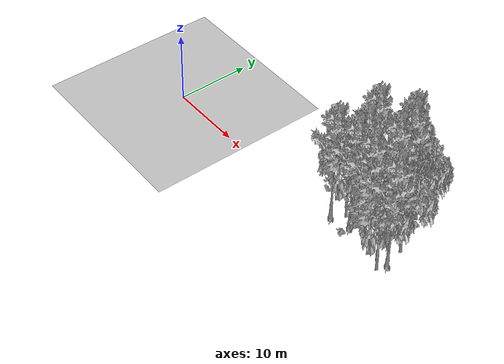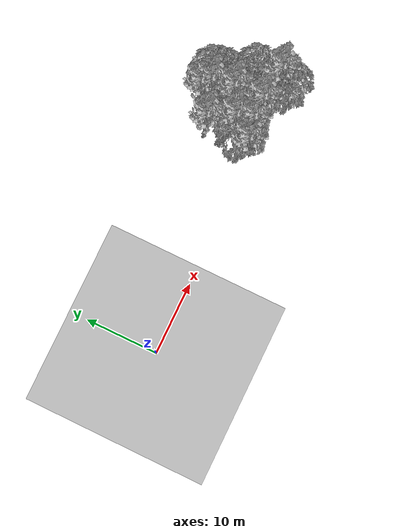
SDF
<sdf version="1.7">
 <world name="default">
  <model name="ground_plane">
   <static>1</static>
   <link name="link">
    <collision name="collision">
     <pose>-50 0 0 0 -0 0</pose>
     <geometry><plane><normal>0 0 1</normal><size>80 80</size></plane></geometry>
     <surface><contact><ode><min_depth>0.01</min_depth><max_vel>0</max_vel></ode></contact></surface>
    </collision>
    <visual name="grass">
     <cast_shadows>0</cast_shadows>
     <geometry>
      <mesh>
       <scale>0.46714285714285714 0.46714285714285714 0.1</scale>
       <uri>file://grass_plane/meshes/grass_plane.dae</uri>
      </mesh>
     </geometry>
    </visual>
   </link>
  </model>
  <model name="Tree 3">
   <static>1</static>
   <pose>33.07853094448184 8.361602892526335 0 1.57079 -0 0</pose>
   <link name="link">
    <collision name="collision">
     <geometry><mesh><scale>3.5 5 3.5</scale><uri>model://tree_9/meshes/tree_9.obj</uri></mesh></geometry>
    </collision>
    <visual name="visual">
     <geometry><mesh><scale>3.5 5 3.5</scale><uri>model://tree_9/meshes/tree_9.obj</uri></mesh></geometry>
    </visual>
   </link>
  </model>
  <model name="Tree 54">
   <static>1</static>
   <pose>34.691174662508175 2.7746149690742072 0 1.57079 -0 0</pose>
   <link name="link">
    <collision name="collision">
     <geometry><mesh><scale>3.5 5 3.5</scale><uri>model://tree_2/meshes/tree_2.obj</uri></mesh></geometry>
    </collision>
    <visual name="visual">
     <geometry><mesh><scale>3.5 5 3.5</scale><uri>model://tree_2/meshes/tree_2.obj</uri></mesh></geometry>
    </visual>
   </link>
  </model>
  <model name="Tree 116">
   <static>1</static>
   <pose>37.39580090691592 3.9113351402654075 0 1.57079 -0 0</pose>
   <link name="link">
    <collision name="collision">
     <geometry><mesh><scale>3.5 5 3.5</scale><uri>model://tree_2/meshes/tree_2.obj</uri></mesh></geometry>
    </collision>
    <visual name="visual">
     <geometry><mesh><scale>3.5 5 3.5</scale><uri>model://tree_2/meshes/tree_2.obj</uri></mesh></geometry>
    </visual>
   </link>
  </model>
  <model name="Tree 146">
   <static>1</static>
   <pose>28.466261155221858 1.1080971714777021 0 1.57079 -0 0</pose>
   <link name="link">
    <collision name="collision">
     <geometry><mesh><scale>3.5 5 3.5</scale><uri>model://tree_9/meshes/tree_9.obj</uri></mesh></geometry>
    </collision>
    <visual name="visual">
     <geometry><mesh><scale>3.5 5 3.5</scale><uri>model://tree_9/meshes/tree_9.obj</uri></mesh></geometry>
    </visual>
   </link>
  </model>
  <model name="Tree 219">
   <static>1</static>
   <pose>28.799294031989064 6.984901622318908 0 1.57079 -0 0</pose>
   <link name="link">
    <collision name="collision">
     <geometry><mesh><scale>3.5 5 3.5</scale><uri>model://tree_9/meshes/tree_9.obj</uri></mesh></geometry>
    </collision>
    <visual name="visual">
     <geometry><mesh><scale>3.5 5 3.5</scale><uri>model://tree_9/meshes/tree_9.obj</uri></mesh></geometry>
    </visual>
   </link>
  </model>
  <model name="Tree 233">
   <static>1</static>
   <pose>35.18607032287447 6.306850268227386 0 1.57079 -0 0</pose>
   <link name="link">
    <collision name="collision">
     <geometry><mesh><scale>3.5 5 3.5</scale><uri>model://tree_2/meshes/tree_2.obj</uri></mesh></geometry>
    </collision>
    <visual name="visual">
     <geometry><mesh><scale>3.5 5 3.5</scale><uri>model://tree_2/meshes/tree_2.obj</uri></mesh></geometry>
    </visual>
   </link>
  </model>
  <model name="Tree 266">
   <static>1</static>
   <pose>29.38266142234768 2.642022029390617 0 1.57079 -0 0</pose>
   <link name="link">
    <collision name="collision">
     <geometry><mesh><scale>3.5 5 3.5</scale><uri>model://tree_2/meshes/tree_2.obj</uri></mesh></geometry>
    </collision>
    <visual name="visual">
     <geometry><mesh><scale>3.5 5 3.5</scale><uri>model://tree_2/meshes/tree_2.obj</uri></mesh></geometry>
    </visual>
   </link>
  </model>
  <model name="Tree 298">
   <static>1</static>
   <pose>33.74872481842068 1.6781170339663305 0 1.57079 -0 0</pose>
   <link name="link">
    <collision name="collision">
     <geometry><mesh><scale>3.5 5 3.5</scale><uri>model://tree_9/meshes/tree_9.obj</uri></mesh></geometry>
    </collision>
    <visual name="visual">
     <geometry><mesh><scale>3.5 5 3.5</scale><uri>model://tree_9/meshes/tree_9.obj</uri></mesh></geometry>
    </visual>
   </link>
  </model>
  <model name="Tree 311">
   <static>1</static>
   <pose>38.14471125622333 1.2561809325310307 0 1.57079 -0 0</pose>
   <link name="link">
    <collision name="collision">
     <geometry><mesh><scale>3.5 5 3.5</scale><uri>model://tree_9/meshes/tree_9.obj</uri></mesh></geometry>
    </collision>
    <visual name="visual">
     <geometry><mesh><scale>3.5 5 3.5</scale><uri>model://tree_9/meshes/tree_9.obj</uri></mesh></geometry>
    </visual>
   </link>
  </model>
  <model name="Tree 344">
   <static>1</static>
   <pose>31.083169705579152 1.7334144598685697 0 1.57079 -0 0</pose>
   <link name="link">
    <collision name="collision">
     <geometry><mesh><scale>3.5 5 3.5</scale><uri>model://tree_9/meshes/tree_9.obj</uri></mesh></geometry>
    </collision>
    <visual name="visual">
     <geometry><mesh><scale>3.5 5 3.5</scale><uri>model://tree_9/meshes/tree_9.obj</uri></mesh></geometry>
    </visual>
   </link>
  </model>
  <model name="Tree 358">
   <static>1</static>
   <pose>33.60952299246486 5.59651908480533 0 1.57079 -0 0</pose>
   <link name="link">
    <collision name="collision">
     <geometry><mesh><scale>3.5 5 3.5</scale><uri>model://tree_9/meshes/tree_9.obj</uri></mesh></geometry>
    </collision>
    <visual name="visual">
     <geometry><mesh><scale>3.5 5 3.5</scale><uri>model://tree_9/meshes/tree_9.obj</uri></mesh></geometry>
    </visual>
   </link>
  </model>
  <model name="Tree 362">
   <static>1</static>
   <pose>32.246007938129964 9.415246016556544 0 1.57079 -0 0</pose>
   <link name="link">
    <collision name="collision">
     <geometry><mesh><scale>3.5 5 3.5</scale><uri>model://tree_9/meshes/tree_9.obj</uri></mesh></geometry>
    </collision>
    <visual name="visual">
     <geometry><mesh><scale>3.5 5 3.5</scale><uri>model://tree_9/meshes/tree_9.obj</uri></mesh></geometry>
    </visual>
   </link>
  </model>
  <model name="Tree 396">
   <static>1</static>
   <pose>30.434655984676894 3.798199246700392 0 1.57079 -0 0</pose>
   <link name="link">
    <collision name="collision">
     <geometry><mesh><scale>3.5 5 3.5</scale><uri>model://tree_9/meshes/tree_9.obj</uri></mesh></geometry>
    </collision>
    <visual name="visual">
     <geometry><mesh><scale>3.5 5 3.5</scale><uri>model://tree_9/meshes/tree_9.obj</uri></mesh></geometry>
    </visual>
   </link>
  </model>
  <model name="Tree 471">
   <static>1</static>
   <pose>37.72801804248665 -0.11377899555043314 0 1.57079 -0 0</pose>
   <link name="link">
    <collision name="collision">
     <geometry><mesh><scale>3.5 5 3.5</scale><uri>model://tree_2/meshes/tree_2.obj</uri></mesh></geometry>
    </collision>
    <visual name="visual">
     <geometry><mesh><scale>3.5 5 3.5</scale><uri>model://tree_2/meshes/tree_2.obj</uri></mesh></geometry>
    </visual>
   </link>
  </model>
  <model name="Tree 527">
   <static>1</static>
   <pose>34.747013461005224 8.909858264757496 0 1.57079 -0 0</pose>
   <link name="link">
    <collision name="collision">
     <geometry><mesh><scale>3.5 5 3.5</scale><uri>model://tree_2/meshes/tree_2.obj</uri></mesh></geometry>
    </collision>
    <visual name="visual">
     <geometry><mesh><scale>3.5 5 3.5</scale><uri>model://tree_2/meshes/tree_2.obj</uri></mesh></geometry>
    </visual>
   </link>
  </model>
  <model name="Tree 566">
   <static>1</static>
   <pose>35.10691997805003 7.917139008286725 0 1.57079 -0 0</pose>
   <link name="link">
    <collision name="collision">
     <geometry><mesh><scale>3.5 5 3.5</scale><uri>model://tree_2/meshes/tree_2.obj</uri></mesh></geometry>
    </collision>
    <visual name="visual">
     <geometry><mesh><scale>3.5 5 3.5</scale><uri>model://tree_2/meshes/tree_2.obj</uri></mesh></geometry>
    </visual>
   </link>
  </model>
  <model name="Bush 35">
   <static>1</static>
   <pose>31.968707638803437 4.514259425079601 0 1.57079 -0 0</pose>
   <link name="link">
    <collision name="collision">
     <geometry><mesh><scale>2 2 2</scale><uri>model://bush_2/meshes/bush_2.obj</uri></mesh></geometry>
     <surface><contact><collide_without_contact>false</collide_without_contact></contact></surface>
    </collision>
    <visual name="visual">
     <geometry><mesh><scale>2 2 2</scale><uri>model://bush_2/meshes/bush_2.obj</uri></mesh></geometry>
    </visual>
   </link>
  </model>
  <model name="Bush 42">
   <static>1</static>
   <pose>35.5031879598497 8.11691613693462 0 1.57079 -0 0</pose>
   <link name="link">
    <collision name="collision">
     <geometry><mesh><scale>2 2 2</scale><uri>model://bush_2/meshes/bush_2.obj</uri></mesh></geometry>
     <surface><contact><collide_without_contact>false</collide_without_contact></contact></surface>
    </collision>
    <visual name="visual">
     <geometry><mesh><scale>2 2 2</scale><uri>model://bush_2/meshes/bush_2.obj</uri></mesh></geometry>
    </visual>
   </link>
  </model>
  <model name="Bush 77">
   <static>1</static>
   <pose>30.12246391385733 5.645513138961604 0 1.57079 -0 0</pose>
   <link name="link">
    <collision name="collision">
     <geometry><mesh><scale>2 2 2</scale><uri>model://bush_2/meshes/bush_2.obj</uri></mesh></geometry>
     <surface><contact><collide_without_contact>false</collide_without_contact></contact></surface>
    </collision>
    <visual name="visual">
     <geometry><mesh><scale>2 2 2</scale><uri>model://bush_2/meshes/bush_2.obj</uri></mesh></geometry>
    </visual>
   </link>
  </model>
  <model name="Bush 103">
   <static>1</static>
   <pose>31.01348696481206 0.48015032132979485 0 1.57079 -0 0</pose>
   <link name="link">
    <collision name="collision">
     <geometry><mesh><scale>2 2 2</scale><uri>model://bush_2/meshes/bush_2.obj</uri></mesh></geometry>
     <surface><contact><collide_without_contact>false</collide_without_contact></contact></surface>
    </collision>
    <visual name="visual">
     <geometry><mesh><scale>2 2 2</scale><uri>model://bush_2/meshes/bush_2.obj</uri></mesh></geometry>
    </visual>
   </link>
  </model>
  <model name="Bush 406">
   <static>1</static>
   <pose>34.040946381440975 8.353247621386146 0 1.57079 -0 0</pose>
   <link name="link">
    <collision name="collision">
     <geometry><mesh><scale>2 2 2</scale><uri>model://bush_5/meshes/bush_5.obj</uri></mesh></geometry>
     <surface><contact><collide_without_contact>false</collide_without_contact></contact></surface>
    </collision>
    <visual name="visual">
     <geometry><mesh><scale>2 2 2</scale><uri>model://bush_5/meshes/bush_5.obj</uri></mesh></geometry>
    </visual>
   </link>
  </model>
  <model name="Bush 472">
   <static>1</static>
   <pose>31.024520062120473 2.073302829394038 0 1.57079 -0 0</pose>
   <link name="link">
    <collision name="collision">
     <geometry><mesh><scale>2 2 2</scale><uri>model://bush_2/meshes/bush_2.obj</uri></mesh></geometry>
     <surface><contact><collide_without_contact>false</collide_without_contact></contact></surface>
    </collision>
    <visual name="visual">
     <geometry><mesh><scale>2 2 2</scale><uri>model://bush_2/meshes/bush_2.obj</uri></mesh></geometry>
    </visual>
   </link>
  </model>
  <model name="Bush 568">
   <static>1</static>
   <pose>32.785902905939324 4.154180317298206 0 1.57079 -0 0</pose>
   <link name="link">
    <collision name="collision">
     <geometry><mesh><scale>2 2 2</scale><uri>model://bush_5/meshes/bush_5.obj</uri></mesh></geometry>
     <surface><contact><collide_without_contact>false</collide_without_contact></contact></surface>
    </collision>
    <visual name="visual">
     <geometry><mesh><scale>2 2 2</scale><uri>model://bush_5/meshes/bush_5.obj</uri></mesh></geometry>
    </visual>
   </link>
  </model>
  <model name="Bush 633">
   <static>1</static>
   <pose>32.818503767383575 5.344634095270166 0 1.57079 -0 0</pose>
   <link name="link">
    <collision name="collision">
     <geometry><mesh><scale>2 2 2</scale><uri>model://bush_0/meshes/bush_0.obj</uri></mesh></geometry>
     <surface><contact><collide_without_contact>false</collide_without_contact></contact></surface>
    </collision>
    <visual name="visual">
     <geometry><mesh><scale>2 2 2</scale><uri>model://bush_0/meshes/bush_0.obj</uri></mesh></geometry>
    </visual>
   </link>
  </model>
 </world>
</sdf>
